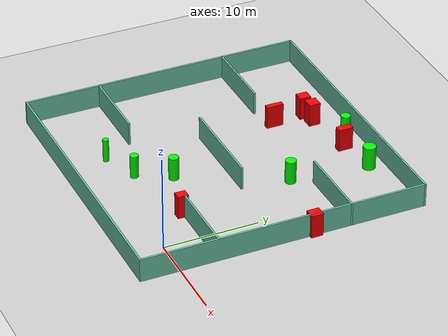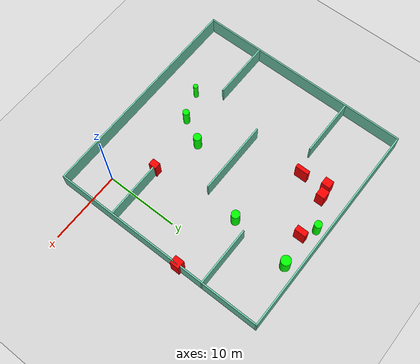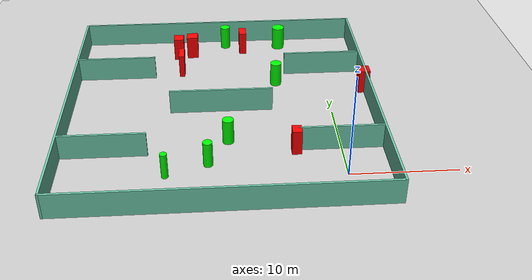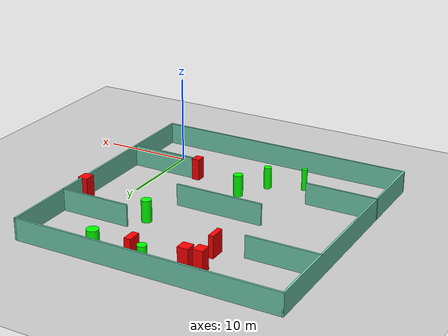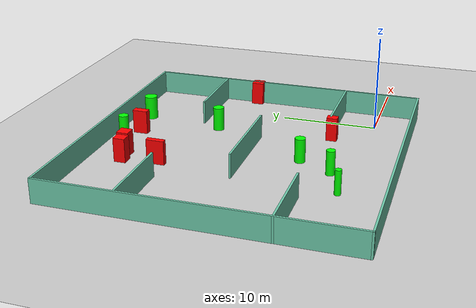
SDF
<sdf version="1.7">
 <world name="default">
  <light name="sun" type="directional">
   <pose>0 0 10 0 -0 0</pose>
   <diffuse>0.8 0.8 0.8 1</diffuse>
   <specular>0.2 0.2 0.2 1</specular>
   <attenuation>
    <range>1000</range>
    <constant>0.9</constant>
    <linear>0.01</linear>
    <quadratic>0.001</quadratic>
   </attenuation>
   <direction>-0.5 0.1 -0.9</direction>
   <spot><inner_angle>0</inner_angle><outer_angle>0</outer_angle><falloff>0</falloff></spot>
  </light>
  <model name="ground_plane">
   <static>1</static>
   <link name="link">
    <collision name="collision">
     <geometry><plane><normal>0 0 1</normal><size>100 100</size></plane></geometry>
     <surface>
      <contact><collide_bitmask>65535</collide_bitmask></contact>
      <friction><ode><mu>100</mu><mu2>50</mu2></ode></friction>
     </surface>
    </collision>
    <visual name="visual">
     <cast_shadows>0</cast_shadows>
     <geometry><plane><normal>0 0 1</normal><size>100 100</size></plane></geometry>
     <material>
      <script><uri>file://media/materials/scripts/gazebo.material</uri><name>Gazebo/Grey</name></script>
     </material>
    </visual>
   </link>
  </model>
  <gravity>0 0 -9.8</gravity>
  <magnetic_field>6e-06 2.3e-05 -4.2e-05</magnetic_field>
  <atmosphere type="adiabatic"/>
  <physics type="ode">
   <max_step_size>0.001</max_step_size>
   <real_time_factor>1</real_time_factor>
   <real_time_update_rate>1000</real_time_update_rate>
  </physics>
  <scene><ambient>0.4 0.4 0.4 1</ambient><background>0.7 0.7 0.7 1</background><shadows>1</shadows></scene>
  <spherical_coordinates>
   <surface_model>EARTH_WGS84</surface_model>
   <latitude_deg>0</latitude_deg>
   <longitude_deg>0</longitude_deg>
   <elevation>0</elevation>
   <heading_deg>0</heading_deg>
  </spherical_coordinates>
  <model name="my_base_walls">
   <link name="Wall_10">
    <collision name="Wall_10_Collision">
     <geometry><box><size>8.2 0.2 2.5</size></box></geometry>
     <pose>0 0 1.25 0 -0 0</pose>
    </collision>
    <visual name="Wall_10_Visual">
     <pose>0 0 1.25 0 -0 0</pose>
     <geometry><box><size>8.2 0.2 2.5</size></box></geometry>
     <material>
      <script><uri>file://media/materials/scripts/gazebo.material</uri><name>Gazebo/Grey</name></script>
      <ambient>0.435294 0.796078 0.67451 1</ambient>
     </material>
     <meta><layer>0</layer></meta>
    </visual>
    <pose>-11 -7 0 0 -0 0</pose>
   </link>
   <link name="Wall_12">
    <collision name="Wall_12_Collision">
     <geometry><box><size>8.2 0.2 2.5</size></box></geometry>
     <pose>0 0 1.25 0 -0 0</pose>
    </collision>
    <visual name="Wall_12_Visual">
     <pose>0 0 1.25 0 -0 0</pose>
     <geometry><box><size>8.2 0.2 2.5</size></box></geometry>
     <material>
      <script><uri>file://media/materials/scripts/gazebo.material</uri><name>Gazebo/Grey</name></script>
      <ambient>0.435294 0.796078 0.67451 1</ambient>
     </material>
     <meta><layer>0</layer></meta>
    </visual>
    <pose>-11 7 0 0 -0 0</pose>
   </link>
   <link name="Wall_14">
    <collision name="Wall_14_Collision">
     <geometry><box><size>8.2 0.2 2.5</size></box></geometry>
     <pose>0 0 1.25 0 -0 0</pose>
    </collision>
    <visual name="Wall_14_Visual">
     <pose>0 0 1.25 0 -0 0</pose>
     <geometry><box><size>8.2 0.2 2.5</size></box></geometry>
     <material>
      <script><uri>file://media/materials/scripts/gazebo.material</uri><name>Gazebo/Grey</name></script>
      <ambient>0.435294 0.796078 0.67451 1</ambient>
     </material>
     <meta><layer>0</layer></meta>
    </visual>
    <pose>11 7 0 0 -0 3.14159</pose>
   </link>
   <link name="Wall_16">
    <collision name="Wall_16_Collision">
     <geometry><box><size>10.2 0.2 2.5</size></box></geometry>
     <pose>0 0 1.25 0 -0 0</pose>
    </collision>
    <visual name="Wall_16_Visual">
     <pose>0 0 1.25 0 -0 0</pose>
     <geometry><box><size>10.2 0.2 2.5</size></box></geometry>
     <material>
      <script><uri>file://media/materials/scripts/gazebo.material</uri><name>Gazebo/Grey</name></script>
      <ambient>0.435294 0.796078 0.67451 1</ambient>
     </material>
     <meta><layer>0</layer></meta>
    </visual>
    <pose>0 0 0 0 -0 3.14159</pose>
   </link>
   <link name="Wall_2">
    <collision name="Wall_2_Collision">
     <geometry><box><size>30.2 0.2 2.5</size></box></geometry>
     <pose>0 0 1.25 0 -0 0</pose>
    </collision>
    <visual name="Wall_2_Visual">
     <pose>0 0 1.25 0 -0 0</pose>
     <geometry><box><size>30.2 0.2 2.5</size></box></geometry>
     <material>
      <script><uri>file://media/materials/scripts/gazebo.material</uri><name>Gazebo/Grey</name></script>
      <ambient>0.435294 0.796078 0.67451 1</ambient>
     </material>
     <meta><layer>0</layer></meta>
    </visual>
    <pose>0 -15 0 0 -0 3.14159</pose>
   </link>
   <link name="Wall_3">
    <collision name="Wall_3_Collision">
     <geometry><box><size>30.2 0.2 2.5</size></box></geometry>
     <pose>0 0 1.25 0 -0 0</pose>
    </collision>
    <visual name="Wall_3_Visual">
     <pose>0 0 1.25 0 -0 0</pose>
     <geometry><box><size>30.2 0.2 2.5</size></box></geometry>
     <material>
      <script><uri>file://media/materials/scripts/gazebo.material</uri><name>Gazebo/Grey</name></script>
      <ambient>0.435294 0.796078 0.67451 1</ambient>
     </material>
     <meta><layer>0</layer></meta>
    </visual>
    <pose>-15 0 0 0 -0 1.5708</pose>
   </link>
   <link name="Wall_4">
    <collision name="Wall_4_Collision">
     <geometry><box><size>30.2 0.2 2.5</size></box></geometry>
     <pose>0 0 1.25 0 -0 0</pose>
    </collision>
    <visual name="Wall_4_Visual">
     <pose>0 0 1.25 0 -0 0</pose>
     <geometry><box><size>30.2 0.2 2.5</size></box></geometry>
     <material>
      <script><uri>file://media/materials/scripts/gazebo.material</uri><name>Gazebo/Grey</name></script>
      <ambient>0.435294 0.796078 0.67451 1</ambient>
     </material>
     <meta><layer>0</layer></meta>
    </visual>
    <pose>0 15 0 0 -0 0</pose>
   </link>
   <link name="Wall_6">
    <collision name="Wall_6_Collision">
     <geometry><box><size>30.2 0.2 2.5</size></box></geometry>
     <pose>0 0 1.25 0 -0 0</pose>
    </collision>
    <visual name="Wall_6_Visual">
     <pose>0 0 1.25 0 -0 0</pose>
     <geometry><box><size>30.2 0.2 2.5</size></box></geometry>
     <material>
      <script><uri>file://media/materials/scripts/gazebo.material</uri><name>Gazebo/Grey</name></script>
      <ambient>0.435294 0.796078 0.67451 1</ambient>
     </material>
     <meta><layer>0</layer></meta>
    </visual>
    <pose>15 0 0 0 -0 1.5708</pose>
   </link>
   <link name="Wall_8">
    <collision name="Wall_8_Collision">
     <geometry><box><size>8.2 0.2 2.5</size></box></geometry>
     <pose>0 0 1.25 0 -0 0</pose>
    </collision>
    <visual name="Wall_8_Visual">
     <pose>0 0 1.25 0 -0 0</pose>
     <geometry><box><size>8.2 0.2 2.5</size></box></geometry>
     <material>
      <script><uri>file://media/materials/scripts/gazebo.material</uri><name>Gazebo/Grey</name></script>
      <ambient>0.435294 0.796078 0.67451 1</ambient>
     </material>
     <meta><layer>0</layer></meta>
    </visual>
    <pose>11 -7 0 0 -0 3.14159</pose>
   </link>
   <static>1</static>
   <pose>-11 11 0 0 -0 0</pose>
  </model>
  <model name="cylinder1">
   <static>1</static>
   <link name="link">
    <inertial>
     <mass>1</mass>
     <inertia><ixx>0.5</ixx><ixy>0</ixy><ixz>0</ixz><iyy>0.5</iyy><iyz>0</iyz><izz>1</izz></inertia>
    </inertial>
    <collision name="collision">
     <geometry><cylinder><radius>0.5698407856262795</radius><length>2.5</length></cylinder></geometry>
    </collision>
    <visual name="visual">
     <geometry><cylinder><radius>0.5698407856262795</radius><length>2.5</length></cylinder></geometry>
     <material>
      <ambient>0 1 0 1</ambient>
      <diffuse>0 1 0 1</diffuse>
      <specular>0.1 0.1 0.1 1</specular>
      <emissive>0 0 0 0</emissive>
     </material>
    </visual>
   </link>
   <pose>-5.144013562526954 15.942438589638723 1.25 0 0 0</pose>
  </model>
  <model name="cylinder2">
   <static>1</static>
   <link name="link">
    <inertial>
     <mass>1</mass>
     <inertia><ixx>0.5</ixx><ixy>0</ixy><ixz>0</ixz><iyy>0.5</iyy><iyz>0</iyz><izz>1</izz></inertia>
    </inertial>
    <collision name="collision">
     <geometry><cylinder><radius>0.5342143931880134</radius><length>2.5</length></cylinder></geometry>
    </collision>
    <visual name="visual">
     <geometry><cylinder><radius>0.5342143931880134</radius><length>2.5</length></cylinder></geometry>
     <material>
      <ambient>0 1 0 1</ambient>
      <diffuse>0 1 0 1</diffuse>
      <specular>0.1 0.1 0.1 1</specular>
      <emissive>0 0 0 0</emissive>
     </material>
    </visual>
   </link>
   <pose>-10.470754581944348 5.654701000434091 1.25 0 0 0</pose>
  </model>
  <model name="cylinder3">
   <static>1</static>
   <link name="link">
    <inertial>
     <mass>1</mass>
     <inertia><ixx>0.5</ixx><ixy>0</ixy><ixz>0</ixz><iyy>0.5</iyy><iyz>0</iyz><izz>1</izz></inertia>
    </inertial>
    <collision name="collision">
     <geometry><cylinder><radius>0.44152429301294904</radius><length>2.5</length></cylinder></geometry>
    </collision>
    <visual name="visual">
     <geometry><cylinder><radius>0.44152429301294904</radius><length>2.5</length></cylinder></geometry>
     <material>
      <ambient>0 1 0 1</ambient>
      <diffuse>0 1 0 1</diffuse>
      <specular>0.1 0.1 0.1 1</specular>
      <emissive>0 0 0 0</emissive>
     </material>
    </visual>
   </link>
   <pose>-12.3821261133614 2.221603199650769 1.25 0 0 0</pose>
  </model>
  <model name="cylinder4">
   <static>1</static>
   <link name="link">
    <inertial>
     <mass>1</mass>
     <inertia><ixx>0.5</ixx><ixy>0</ixy><ixz>0</ixz><iyy>0.5</iyy><iyz>0</iyz><izz>1</izz></inertia>
    </inertial>
    <collision name="collision">
     <geometry><cylinder><radius>0.6744091889775892</radius><length>2.5</length></cylinder></geometry>
    </collision>
    <visual name="visual">
     <geometry><cylinder><radius>0.6744091889775892</radius><length>2.5</length></cylinder></geometry>
     <material>
      <ambient>0 1 0 1</ambient>
      <diffuse>0 1 0 1</diffuse>
      <specular>0.1 0.1 0.1 1</specular>
      <emissive>0 0 0 0</emissive>
     </material>
    </visual>
   </link>
   <pose>-4.207239632086374 24.19820920010269 1.25 0 0 0</pose>
  </model>
  <model name="cylinder5">
   <static>1</static>
   <link name="link">
    <inertial>
     <mass>1</mass>
     <inertia><ixx>0.5</ixx><ixy>0</ixy><ixz>0</ixz><iyy>0.5</iyy><iyz>0</iyz><izz>1</izz></inertia>
    </inertial>
    <collision name="collision">
     <geometry><cylinder><radius>0.5109047271989963</radius><length>2.5</length></cylinder></geometry>
    </collision>
    <visual name="visual">
     <geometry><cylinder><radius>0.5109047271989963</radius><length>2.5</length></cylinder></geometry>
     <material>
      <ambient>0 1 0 1</ambient>
      <diffuse>0 1 0 1</diffuse>
      <specular>0.1 0.1 0.1 1</specular>
      <emissive>0 0 0 0</emissive>
     </material>
    </visual>
   </link>
   <pose>-10.267528366496615 24.622608951081933 1.25 0 0 0</pose>
  </model>
  <model name="cylinder6">
   <static>1</static>
   <link name="link">
    <inertial>
     <mass>1</mass>
     <inertia><ixx>0.5</ixx><ixy>0</ixy><ixz>0</ixz><iyy>0.5</iyy><iyz>0</iyz><izz>1</izz></inertia>
    </inertial>
    <collision name="collision">
     <geometry><cylinder><radius>0.3190232533700612</radius><length>2.5</length></cylinder></geometry>
    </collision>
    <visual name="visual">
     <geometry><cylinder><radius>0.3190232533700612</radius><length>2.5</length></cylinder></geometry>
     <material>
      <ambient>0 1 0 1</ambient>
      <diffuse>0 1 0 1</diffuse>
      <specular>0.1 0.1 0.1 1</specular>
      <emissive>0 0 0 0</emissive>
     </material>
    </visual>
   </link>
   <pose>-16.204998304197495 0.734649236231478 1.25 0 0 0</pose>
  </model>
  <model name="box1">
   <static>1</static>
   <link name="link">
    <inertial>
     <mass>1</mass>
     <inertia><ixx>0.083</ixx><ixy>0</ixy><ixz>0</ixz><iyy>0.083</iyy><iyz>0</iyz><izz>0.083</izz></inertia>
    </inertial>
    <collision name="collision">
     <geometry><box><size>1.2171990077556005 1.2034915515674802 2.5</size></box></geometry>
    </collision>
    <visual name="visual">
     <geometry><box><size>1.2171990077556005 1.2034915515674802 2.5</size></box></geometry>
     <material>
      <ambient>1 0 0 1</ambient>
      <diffuse>1 0 0 1</diffuse>
      <specular>0.1 0.1 0.1 1</specular>
      <emissive>0 0 0 0</emissive>
     </material>
    </visual>
    <sensor name="my_contact" type="contact">
     <contact><collision>box_collision</collision><topic>__default_topic__</topic></contact>
    </sensor>
   </link>
   <pose>-13.987486425533053 22.707680247844625 1.25 0 0 0</pose>
  </model>
  <model name="box2">
   <static>1</static>
   <link name="link">
    <inertial>
     <mass>1</mass>
     <inertia><ixx>0.083</ixx><ixy>0</ixy><ixz>0</ixz><iyy>0.083</iyy><iyz>0</iyz><izz>0.083</izz></inertia>
    </inertial>
    <collision name="collision">
     <geometry><box><size>0.90217022507465 1.1058010308107105 2.5</size></box></geometry>
    </collision>
    <visual name="visual">
     <geometry><box><size>0.90217022507465 1.1058010308107105 2.5</size></box></geometry>
     <material>
      <ambient>1 0 0 1</ambient>
      <diffuse>1 0 0 1</diffuse>
      <specular>0.1 0.1 0.1 1</specular>
      <emissive>0 0 0 0</emissive>
     </material>
    </visual>
    <sensor name="my_contact" type="contact">
     <contact><collision>box_collision</collision><topic>__default_topic__</topic></contact>
    </sensor>
   </link>
   <pose>-4.2335903653568625 3.779890408867942 1.25 0 0 0</pose>
  </model>
  <model name="box3">
   <static>1</static>
   <link name="link">
    <inertial>
     <mass>1</mass>
     <inertia><ixx>0.083</ixx><ixy>0</ixy><ixz>0</ixz><iyy>0.083</iyy><iyz>0</iyz><izz>0.083</izz></inertia>
    </inertial>
    <collision name="collision">
     <geometry><box><size>0.554542363187726 1.8219178183153755 2.5</size></box></geometry>
    </collision>
    <visual name="visual">
     <geometry><box><size>0.554542363187726 1.8219178183153755 2.5</size></box></geometry>
     <material>
      <ambient>1 0 0 1</ambient>
      <diffuse>1 0 0 1</diffuse>
      <specular>0.1 0.1 0.1 1</specular>
      <emissive>0 0 0 0</emissive>
     </material>
    </visual>
    <sensor name="my_contact" type="contact">
     <contact><collision>box_collision</collision><topic>__default_topic__</topic></contact>
    </sensor>
   </link>
   <pose>-15.089566735571724 18.892227588586735 1.25 0 0 0</pose>
  </model>
  <model name="box4">
   <static>1</static>
   <link name="link">
    <inertial>
     <mass>1</mass>
     <inertia><ixx>0.083</ixx><ixy>0</ixy><ixz>0</ixz><iyy>0.083</iyy><iyz>0</iyz><izz>0.083</izz></inertia>
    </inertial>
    <collision name="collision">
     <geometry><box><size>0.7734683053655165 1.5526998258766331 2.5</size></box></geometry>
    </collision>
    <visual name="visual">
     <geometry><box><size>0.7734683053655165 1.5526998258766331 2.5</size></box></geometry>
     <material>
      <ambient>1 0 0 1</ambient>
      <diffuse>1 0 0 1</diffuse>
      <specular>0.1 0.1 0.1 1</specular>
      <emissive>0 0 0 0</emissive>
     </material>
    </visual>
    <sensor name="my_contact" type="contact">
     <contact><collision>box_collision</collision><topic>__default_topic__</topic></contact>
    </sensor>
   </link>
   <pose>-8.338882634773825 23.508428236954003 1.25 0 0 0</pose>
  </model>
  <model name="box5">
   <static>1</static>
   <link name="link">
    <inertial>
     <mass>1</mass>
     <inertia><ixx>0.083</ixx><ixy>0</ixy><ixz>0</ixz><iyy>0.083</iyy><iyz>0</iyz><izz>0.083</izz></inertia>
    </inertial>
    <collision name="collision">
     <geometry><box><size>1.1357055105600007 1.2764051762077098 2.5</size></box></geometry>
    </collision>
    <visual name="visual">
     <geometry><box><size>1.1357055105600007 1.2764051762077098 2.5</size></box></geometry>
     <material>
      <ambient>1 0 0 1</ambient>
      <diffuse>1 0 0 1</diffuse>
      <specular>0.1 0.1 0.1 1</specular>
      <emissive>0 0 0 0</emissive>
     </material>
    </visual>
    <sensor name="my_contact" type="contact">
     <contact><collision>box_collision</collision><topic>__default_topic__</topic></contact>
    </sensor>
   </link>
   <pose>3.8620595544451675 14.158293533552488 1.25 0 0 0</pose>
  </model>
  <model name="box6">
   <static>1</static>
   <link name="link">
    <inertial>
     <mass>1</mass>
     <inertia><ixx>0.083</ixx><ixy>0</ixy><ixz>0</ixz><iyy>0.083</iyy><iyz>0</iyz><izz>0.083</izz></inertia>
    </inertial>
    <collision name="collision">
     <geometry><box><size>1.0808088492004153 1.200620705476469 2.5</size></box></geometry>
    </collision>
    <visual name="visual">
     <geometry><box><size>1.0808088492004153 1.200620705476469 2.5</size></box></geometry>
     <material>
      <ambient>1 0 0 1</ambient>
      <diffuse>1 0 0 1</diffuse>
      <specular>0.1 0.1 0.1 1</specular>
      <emissive>0 0 0 0</emissive>
     </material>
    </visual>
    <sensor name="my_contact" type="contact">
     <contact><collision>box_collision</collision><topic>__default_topic__</topic></contact>
    </sensor>
   </link>
   <pose>-15.480754939630812 22.400364471999385 1.25 0 0 0</pose>
  </model>
 </world>
</sdf>
